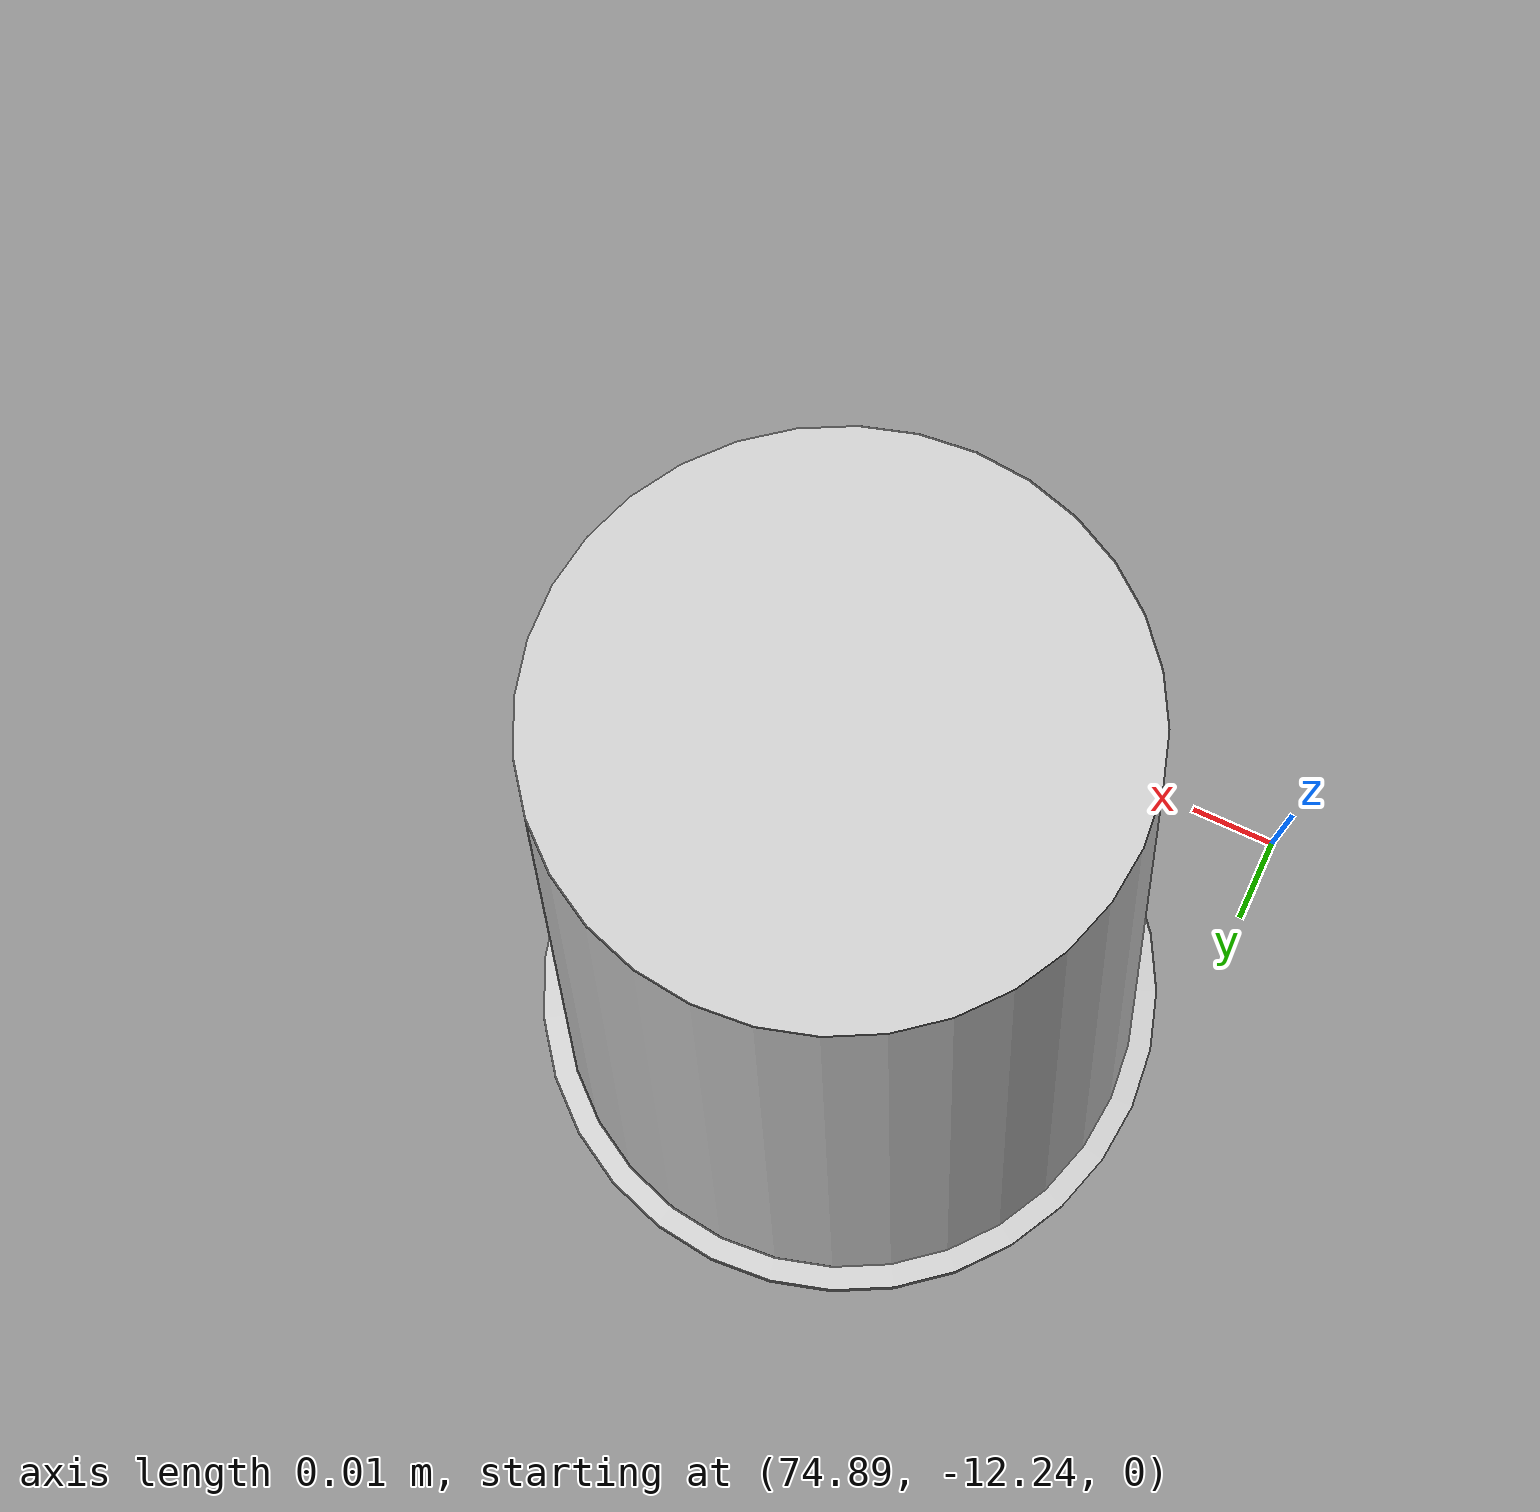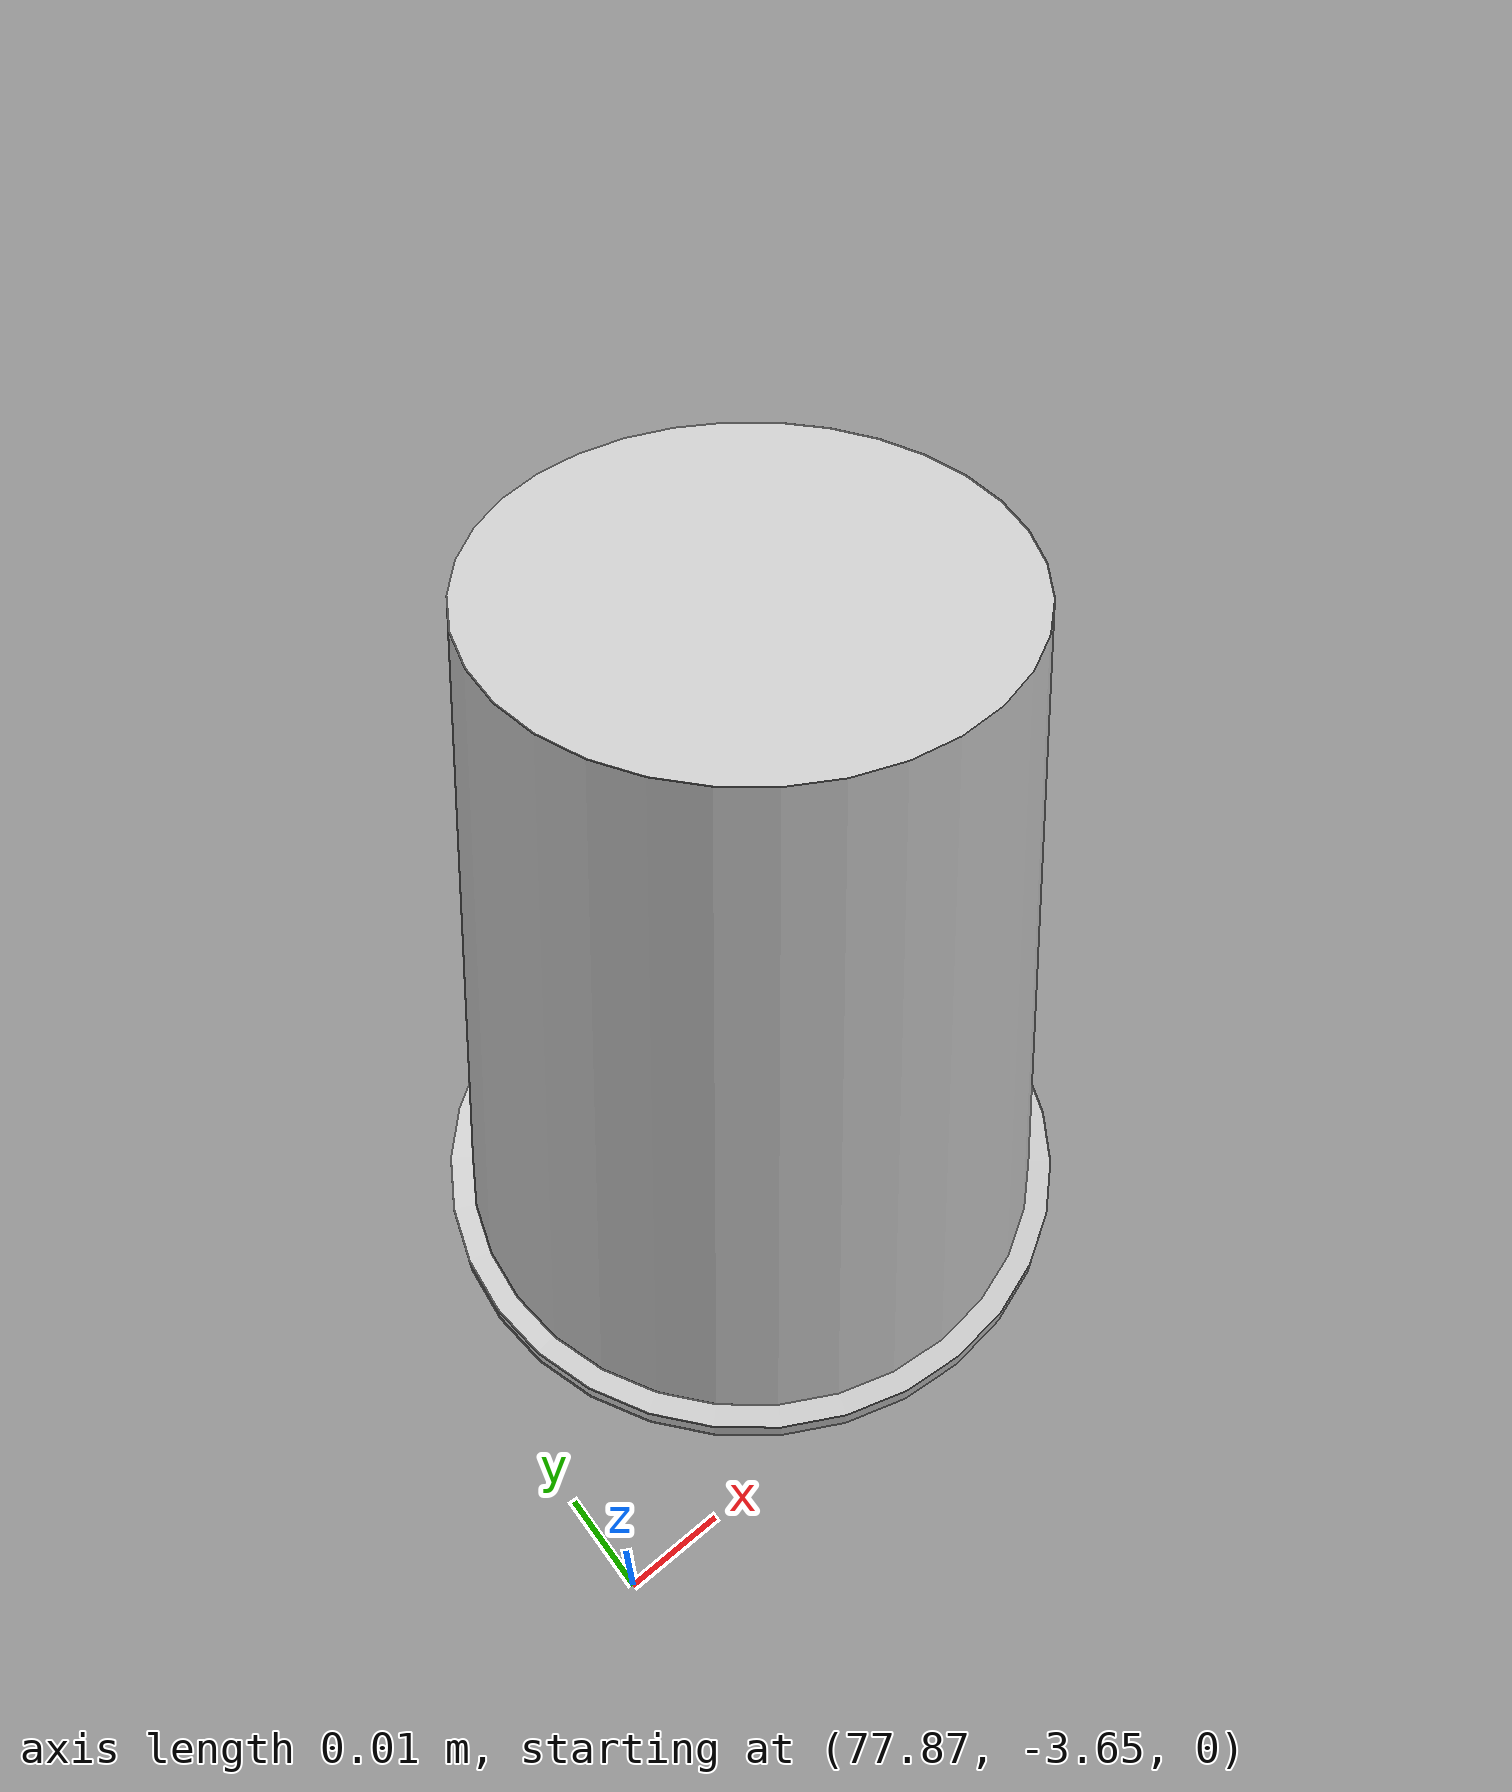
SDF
<?xml version='1.0' encoding='UTF-8'?>
<sdf version="1.4">
  <model name="some track">
    <include>
      <uri>model://cone_yellow</uri>
      <pose>13.018183827800518 -1.8761517657883515 0 0 0 0</pose>
      <name>cone_right</name>
    </include>
    <include>
      <uri>model://cone_yellow</uri>
      <pose>17.446338333294612 -1.8729243865340777 0 0 0 0</pose>
      <name>cone_right</name>
    </include>
    <include>
      <uri>model://cone_yellow</uri>
      <pose>22.03917398223844 -0.8503657977349797 0 0 0 0</pose>
      <name>cone_right</name>
    </include>
    <include>
      <uri>model://cone_yellow</uri>
      <pose>26.32002260661248 0.3801980834649836 0 0 0 0</pose>
      <name>cone_right</name>
    </include>
    <include>
      <uri>model://cone_yellow</uri>
      <pose>30.451404876103016 1.1212497239123707 0 0 0 0</pose>
      <name>cone_right</name>
    </include>
    <include>
      <uri>model://cone_yellow</uri>
      <pose>34.65109933313455 1.4989120932964197 0 0 0 0</pose>
      <name>cone_right</name>
    </include>
    <include>
      <uri>model://cone_yellow</uri>
      <pose>38.86049186484167 1.4842869000559271 0 0 0 0</pose>
      <name>cone_right</name>
    </include>
    <include>
      <uri>model://cone_yellow</uri>
      <pose>43.15242149931113 1.3215263096332124 0 0 0 0</pose>
      <name>cone_right</name>
    </include>
    <include>
      <uri>model://cone_yellow</uri>
      <pose>47.252830080558034 0.5722896899786338 0 0 0 0</pose>
      <name>cone_right</name>
    </include>
    <include>
      <uri>model://cone_yellow</uri>
      <pose>50.409138872110574 -1.4493029271943685 0 0 0 0</pose>
      <name>cone_right</name>
    </include>
    <include>
      <uri>model://cone_yellow</uri>
      <pose>52.37995716476051 -4.614360037074207 0 0 0 0</pose>
      <name>cone_right</name>
    </include>
    <include>
      <uri>model://cone_yellow</uri>
      <pose>53.428686420909216 -8.340840742944486 0 0 0 0</pose>
      <name>cone_right</name>
    </include>
    <include>
      <uri>model://cone_yellow</uri>
      <pose>53.99261852760999 -12.404962930217938 0 0 0 0</pose>
      <name>cone_right</name>
    </include>
    <include>
      <uri>model://cone_yellow</uri>
      <pose>54.54151253230147 -16.796036110092917 0 0 0 0</pose>
      <name>cone_right</name>
    </include>
    <include>
      <uri>model://cone_yellow</uri>
      <pose>60.38661123042525 -24.535169080793683 0 0 0 0</pose>
      <name>cone_right</name>
    </include>
    <include>
      <uri>model://cone_yellow</uri>
      <pose>70.39183582168157 -24.252833173585273 0 0 0 0</pose>
      <name>cone_right</name>
    </include>
    <include>
      <uri>model://cone_yellow</uri>
      <pose>77.35174907179476 -17.59254280828863 0 0 0 0</pose>
      <name>cone_right</name>
    </include>
    <include>
      <uri>model://cone_yellow</uri>
      <pose>78.14695944268779 -12.651447426787035 0 0 0 0</pose>
      <name>cone_right</name>
    </include>
    <include>
      <uri>model://cone_yellow</uri>
      <pose>78.18425080565142 -8.102791006440482 0 0 0 0</pose>
      <name>cone_right</name>
    </include>
    <include>
      <uri>model://cone_yellow</uri>
      <pose>77.90977017052852 -3.618528937957556 0 0 0 0</pose>
      <name>cone_right</name>
    </include>
    <include>
      <uri>model://cone_yellow</uri>
      <pose>72.29112397917714 4.323608194424429 0 0 0 0</pose>
      <name>cone_right</name>
    </include>
    <include>
      <uri>model://cone_yellow</uri>
      <pose>67.845990919906 6.263111611761152 0 0 0 0</pose>
      <name>cone_right</name>
    </include>
    <include>
      <uri>model://cone_yellow</uri>
      <pose>63.48034454793363 7.4888733407280395 0 0 0 0</pose>
      <name>cone_right</name>
    </include>
    <include>
      <uri>model://cone_yellow</uri>
      <pose>58.95966201330974 8.16184394716597 0 0 0 0</pose>
      <name>cone_right</name>
    </include>
    <include>
      <uri>model://cone_yellow</uri>
      <pose>54.80833237162309 9.081069343031144 0 0 0 0</pose>
      <name>cone_right</name>
    </include>
    <include>
      <uri>model://cone_yellow</uri>
      <pose>50.46742921628984 9.862091479545152 0 0 0 0</pose>
      <name>cone_right</name>
    </include>
    <include>
      <uri>model://cone_yellow</uri>
      <pose>45.89551176898509 10.085761481046779 0 0 0 0</pose>
      <name>cone_right</name>
    </include>
    <include>
      <uri>model://cone_yellow</uri>
      <pose>32.752181499183045 16.563725818774373 0 0 0 0</pose>
      <name>cone_right</name>
    </include>
    <include>
      <uri>model://cone_yellow</uri>
      <pose>32.12775019947357 20.339286712477612 0 0 0 0</pose>
      <name>cone_right</name>
    </include>
    <include>
      <uri>model://cone_yellow</uri>
      <pose>31.644544130664016 24.611409703326974 0 0 0 0</pose>
      <name>cone_right</name>
    </include>
    <include>
      <uri>model://cone_yellow</uri>
      <pose>31.04134880699015 28.963865401196166 0 0 0 0</pose>
      <name>cone_right</name>
    </include>
    <include>
      <uri>model://cone_yellow</uri>
      <pose>30.853051789699 33.113166931721864 0 0 0 0</pose>
      <name>cone_right</name>
    </include>
    <include>
      <uri>model://cone_yellow</uri>
      <pose>30.97441718426301 37.415970550041536 0 0 0 0</pose>
      <name>cone_right</name>
    </include>
    <include>
      <uri>model://cone_yellow</uri>
      <pose>28.926955552532284 46.46333764436716 0 0 0 0</pose>
      <name>cone_right</name>
    </include>
    <include>
      <uri>model://cone_yellow</uri>
      <pose>21.194099951942203 52.290363032788726 0 0 0 0</pose>
      <name>cone_right</name>
    </include>
    <include>
      <uri>model://cone_yellow</uri>
      <pose>16.408387685502955 53.24054216236376 0 0 0 0</pose>
      <name>cone_right</name>
    </include>
    <include>
      <uri>model://cone_yellow</uri>
      <pose>7.26521791242433 50.2101765499676 0 0 0 0</pose>
      <name>cone_right</name>
    </include>
    <include>
      <uri>model://cone_yellow</uri>
      <pose>5.178309369265025 40.3690123301844 0 0 0 0</pose>
      <name>cone_right</name>
    </include>
    <include>
      <uri>model://cone_yellow</uri>
      <pose>5.267407310666343 36.09420157707506 0 0 0 0</pose>
      <name>cone_right</name>
    </include>
    <include>
      <uri>model://cone_yellow</uri>
      <pose>5.000240462112762 31.86909516987686 0 0 0 0</pose>
      <name>cone_right</name>
    </include>
    <include>
      <uri>model://cone_yellow</uri>
      <pose>5.2348068549472 27.326979877221174 0 0 0 0</pose>
      <name>cone_right</name>
    </include>
    <include>
      <uri>model://cone_yellow</uri>
      <pose>5.6074450256122175 22.93380485606857 0 0 0 0</pose>
      <name>cone_right</name>
    </include>
    <include>
      <uri>model://cone_yellow</uri>
      <pose>5.488594081147825 18.753798167718816 0 0 0 0</pose>
      <name>cone_right</name>
    </include>
    <include>
      <uri>model://cone_yellow</uri>
      <pose>4.1840931059265 15.06458186588745 0 0 0 0</pose>
      <name>cone_right</name>
    </include>
    <include>
      <uri>model://cone_yellow</uri>
      <pose>1.5964927139176024 12.330962633449333 0 0 0 0</pose>
      <name>cone_right</name>
    </include>
    <include>
      <uri>model://cone_yellow</uri>
      <pose>-1.8160543833330922 11.060318989498176 0 0 0 0</pose>
      <name>cone_right</name>
    </include>
    <include>
      <uri>model://cone_yellow</uri>
      <pose>-5.689707248801369 10.829451132791386 0 0 0 0</pose>
      <name>cone_right</name>
    </include>
    <include>
      <uri>model://cone_yellow</uri>
      <pose>-12.086387971927277 17.682758430636493 0 0 0 0</pose>
      <name>cone_right</name>
    </include>
    <include>
      <uri>model://cone_yellow</uri>
      <pose>-11.871746429384476 21.457985758879598 0 0 0 0</pose>
      <name>cone_right</name>
    </include>
    <include>
      <uri>model://cone_yellow</uri>
      <pose>-10.606547512643598 25.177402416129148 0 0 0 0</pose>
      <name>cone_right</name>
    </include>
    <include>
      <uri>model://cone_yellow</uri>
      <pose>-9.343875952466115 29.39876380754218 0 0 0 0</pose>
      <name>cone_right</name>
    </include>
    <include>
      <uri>model://cone_yellow</uri>
      <pose>-8.744506850357485 33.97463811595915 0 0 0 0</pose>
      <name>cone_right</name>
    </include>
    <include>
      <uri>model://cone_yellow</uri>
      <pose>-8.738320762388863 38.55422790265706 0 0 0 0</pose>
      <name>cone_right</name>
    </include>
    <include>
      <uri>model://cone_yellow</uri>
      <pose>-8.941323130932238 42.95867869614133 0 0 0 0</pose>
      <name>cone_right</name>
    </include>
    <include>
      <uri>model://cone_yellow</uri>
      <pose>-9.398862549321064 47.448636112305294 0 0 0 0</pose>
      <name>cone_right</name>
    </include>
    <include>
      <uri>model://cone_yellow</uri>
      <pose>-10.6938574721209 51.955422592191816 0 0 0 0</pose>
      <name>cone_right</name>
    </include>
    <include>
      <uri>model://cone_yellow</uri>
      <pose>-14.040887996151202 55.74999104773838 0 0 0 0</pose>
      <name>cone_right</name>
    </include>
    <include>
      <uri>model://cone_yellow</uri>
      <pose>-18.760782492327625 57.74707265998496 0 0 0 0</pose>
      <name>cone_right</name>
    </include>
    <include>
      <uri>model://cone_yellow</uri>
      <pose>-23.636462337195834 58.06064498584781 0 0 0 0</pose>
      <name>cone_right</name>
    </include>
    <include>
      <uri>model://cone_yellow</uri>
      <pose>-28.34342333380633 57.31688930300705 0 0 0 0</pose>
      <name>cone_right</name>
    </include>
    <include>
      <uri>model://cone_yellow</uri>
      <pose>-32.639235381168135 55.17723407556046 0 0 0 0</pose>
      <name>cone_right</name>
    </include>
    <include>
      <uri>model://cone_yellow</uri>
      <pose>-36.05411766700047 51.58970336580867 0 0 0 0</pose>
      <name>cone_right</name>
    </include>
    <include>
      <uri>model://cone_yellow</uri>
      <pose>-38.51407400184855 47.44666669822931 0 0 0 0</pose>
      <name>cone_right</name>
    </include>
    <include>
      <uri>model://cone_yellow</uri>
      <pose>-40.339219275870995 43.2570370690984 0 0 0 0</pose>
      <name>cone_right</name>
    </include>
    <include>
      <uri>model://cone_yellow</uri>
      <pose>-41.82813541282153 39.06411312522494 0 0 0 0</pose>
      <name>cone_right</name>
    </include>
    <include>
      <uri>model://cone_yellow</uri>
      <pose>-43.22423382713899 34.906566218957906 0 0 0 0</pose>
      <name>cone_right</name>
    </include>
    <include>
      <uri>model://cone_yellow</uri>
      <pose>-44.66486928236475 30.804048948435803 0 0 0 0</pose>
      <name>cone_right</name>
    </include>
    <include>
      <uri>model://cone_yellow</uri>
      <pose>-46.196054801523836 26.794798523346987 0 0 0 0</pose>
      <name>cone_right</name>
    </include>
    <include>
      <uri>model://cone_yellow</uri>
      <pose>-47.80523538546596 22.822522778915673 0 0 0 0</pose>
      <name>cone_right</name>
    </include>
    <include>
      <uri>model://cone_yellow</uri>
      <pose>-49.368832209708565 18.606207689337495 0 0 0 0</pose>
      <name>cone_right</name>
    </include>
    <include>
      <uri>model://cone_yellow</uri>
      <pose>-50.50463213405897 14.039948751311872 0 0 0 0</pose>
      <name>cone_right</name>
    </include>
    <include>
      <uri>model://cone_yellow</uri>
      <pose>-44.10519070384456 1.4710693482319939 0 0 0 0</pose>
      <name>cone_right</name>
    </include>
    <include>
      <uri>model://cone_yellow</uri>
      <pose>-39.80664930721929 -0.745556370054402 0 0 0 0</pose>
      <name>cone_right</name>
    </include>
    <include>
      <uri>model://cone_yellow</uri>
      <pose>-35.2453050019674 -1.911456622080083 0 0 0 0</pose>
      <name>cone_right</name>
    </include>
    <include>
      <uri>model://cone_yellow</uri>
      <pose>-30.593443246743846 -2.1550934511213735 0 0 0 0</pose>
      <name>cone_right</name>
    </include>
    <include>
      <uri>model://cone_yellow</uri>
      <pose>-26.094529260209477 -2.0218251154210467 0 0 0 0</pose>
      <name>cone_right</name>
    </include>
    <include>
      <uri>model://cone_yellow</uri>
      <pose>-21.78471789484447 -2.032971809745005 0 0 0 0</pose>
      <name>cone_right</name>
    </include>
    <include>
      <uri>model://cone_yellow</uri>
      <pose>-17.410995233155784 -1.9905332545981516 0 0 0 0</pose>
      <name>cone_right</name>
    </include>
    <include>
      <uri>model://cone_yellow</uri>
      <pose>-12.983617841508979 -1.7507572763814574 0 0 0 0</pose>
      <name>cone_right</name>
    </include>
    <include>
      <uri>model://cone_yellow</uri>
      <pose>55.465434397724806 -20.095279188084632 0 0 0 0</pose>
      <name>cone_right</name>
    </include>
    <include>
      <uri>model://cone_yellow</uri>
      <pose>57.583167865657515 -22.723309877205942 0 0 0 0</pose>
      <name>cone_right</name>
    </include>
    <include>
      <uri>model://cone_yellow</uri>
      <pose>63.885338547336744 -25.478914871624397 0 0 0 0</pose>
      <name>cone_right</name>
    </include>
    <include>
      <uri>model://cone_yellow</uri>
      <pose>67.38087451247867 -25.01964737255465 0 0 0 0</pose>
      <name>cone_right</name>
    </include>
    <include>
      <uri>model://cone_yellow</uri>
      <pose>73.47892630568246 -22.748824738265377 0 0 0 0</pose>
      <name>cone_right</name>
    </include>
    <include>
      <uri>model://cone_yellow</uri>
      <pose>75.67320435679345 -20.37594265973837 0 0 0 0</pose>
      <name>cone_right</name>
    </include>
    <include>
      <uri>model://cone_yellow</uri>
      <pose>76.94896533146829 -0.14230048266572481 0 0 0 0</pose>
      <name>cone_right</name>
    </include>
    <include>
      <uri>model://cone_yellow</uri>
      <pose>75.17047693946225 2.3736099255379415 0 0 0 0</pose>
      <name>cone_right</name>
    </include>
    <include>
      <uri>model://cone_yellow</uri>
      <pose>42.231958844319735 10.182243683566707 0 0 0 0</pose>
      <name>cone_right</name>
    </include>
    <include>
      <uri>model://cone_yellow</uri>
      <pose>39.3032902523947 10.78366669797989 0 0 0 0</pose>
      <name>cone_right</name>
    </include>
    <include>
      <uri>model://cone_yellow</uri>
      <pose>36.89759819474201 11.698875632956454 0 0 0 0</pose>
      <name>cone_right</name>
    </include>
    <include>
      <uri>model://cone_yellow</uri>
      <pose>34.54420379051654 13.790781770045761 0 0 0 0</pose>
      <name>cone_right</name>
    </include>
    <include>
      <uri>model://cone_yellow</uri>
      <pose>30.831070397183026 40.90711507206588 0 0 0 0</pose>
      <name>cone_right</name>
    </include>
    <include>
      <uri>model://cone_yellow</uri>
      <pose>30.22964738276985 43.91423014413175 0 0 0 0</pose>
      <name>cone_right</name>
    </include>
    <include>
      <uri>model://cone_yellow</uri>
      <pose>26.830299909999734 48.85635839300524 0 0 0 0</pose>
      <name>cone_right</name>
    </include>
    <include>
      <uri>model://cone_yellow</uri>
      <pose>24.215417238638103 50.63447860953114 0 0 0 0</pose>
      <name>cone_right</name>
    </include>
    <include>
      <uri>model://cone_yellow</uri>
      <pose>12.626162715644853 53.12158697428778 0 0 0 0</pose>
      <name>cone_right</name>
    </include>
    <include>
      <uri>model://cone_yellow</uri>
      <pose>9.816570727400144 51.912395485676136 0 0 0 0</pose>
      <name>cone_right</name>
    </include>
    <include>
      <uri>model://cone_yellow</uri>
      <pose>5.548836061711977 47.25345180896656 0 0 0 0</pose>
      <name>cone_right</name>
    </include>
    <include>
      <uri>model://cone_yellow</uri>
      <pose>5.086498139595761 43.83926407641603 0 0 0 0</pose>
      <name>cone_right</name>
    </include>
    <include>
      <uri>model://cone_yellow</uri>
      <pose>-8.179043779584951 10.79988487288017 0 0 0 0</pose>
      <name>cone_right</name>
    </include>
    <include>
      <uri>model://cone_yellow</uri>
      <pose>-10.063959923597231 12.649236561345038 0 0 0 0</pose>
      <name>cone_right</name>
    </include>
    <include>
      <uri>model://cone_yellow</uri>
      <pose>-11.202022501114072 14.818668349736523 0 0 0 0</pose>
      <name>cone_right</name>
    </include>
    <include>
      <uri>model://cone_yellow</uri>
      <pose>-50.789799660683656 9.890630582532133 0 0 0 0</pose>
      <name>cone_right</name>
    </include>
    <include>
      <uri>model://cone_yellow</uri>
      <pose>-49.359743827749554 6.488083945551001 0 0 0 0</pose>
      <name>cone_right</name>
    </include>
    <include>
      <uri>model://cone_yellow</uri>
      <pose>-46.894130322690756 3.825221360087504 0 0 0 0</pose>
      <name>cone_right</name>
    </include>
    <include>
      <uri>model://cone_yellow</uri>
      <pose>2.8860836360147886 -1.7888053387837601 0 0 0 0</pose>
      <name>cone_right</name>
    </include>
    <include>
      <uri>model://cone_yellow</uri>
      <pose>-7.760488933641973 -1.687730282742713 0 0 0 0</pose>
      <name>cone_right</name>
    </include>
    <include>
      <uri>model://cone_yellow</uri>
      <pose>-2.9088862436718017 -1.687730282742713 0 0 0 0</pose>
      <name>cone_right</name>
    </include>
    <include>
      <uri>model://cone_yellow</uri>
      <pose>7.569227899249885 -1.8561887094777845 0 0 0 0</pose>
      <name>cone_right</name>
    </include>
    <include>
      <uri>model://cone_blue</uri>
      <pose>13.127640110177092 1.3720045300583092 0 0 0 0</pose>
      <name>cone_left</name>
    </include>
    <include>
      <uri>model://cone_blue</uri>
      <pose>17.443254395827942 1.3770741502855472 0 0 0 0</pose>
      <name>cone_left</name>
    </include>
    <include>
      <uri>model://cone_blue</uri>
      <pose>21.30480768146249 2.3155789485113356 0 0 0 0</pose>
      <name>cone_left</name>
    </include>
    <include>
      <uri>model://cone_blue</uri>
      <pose>25.420575741081517 3.5032567342249292 0 0 0 0</pose>
      <name>cone_left</name>
    </include>
    <include>
      <uri>model://cone_blue</uri>
      <pose>29.871300487145017 4.319058176260896 0 0 0 0</pose>
      <name>cone_left</name>
    </include>
    <include>
      <uri>model://cone_blue</uri>
      <pose>34.35515761802989 4.7354099692822675 0 0 0 0</pose>
      <name>cone_left</name>
    </include>
    <include>
      <uri>model://cone_blue</uri>
      <pose>38.866362907757726 4.734281597106229 0 0 0 0</pose>
      <name>cone_left</name>
    </include>
    <include>
      <uri>model://cone_blue</uri>
      <pose>43.274791286367815 4.569221744124523 0 0 0 0</pose>
      <name>cone_left</name>
    </include>
    <include>
      <uri>model://cone_blue</uri>
      <pose>47.824930209191116 3.7715398275605647 0 0 0 0</pose>
      <name>cone_left</name>
    </include>
    <include>
      <uri>model://cone_blue</uri>
      <pose>52.08346140045816 1.3362210937158363 0 0 0 0</pose>
      <name>cone_left</name>
    </include>
    <include>
      <uri>model://cone_blue</uri>
      <pose>55.06765753276193 -2.787130787131813 0 0 0 0</pose>
      <name>cone_left</name>
    </include>
    <include>
      <uri>model://cone_blue</uri>
      <pose>56.53968573244879 -7.4005305368952845 0 0 0 0</pose>
      <name>cone_left</name>
    </include>
    <include>
      <uri>model://cone_blue</uri>
      <pose>57.209726235877966 -11.943749320918752 0 0 0 0</pose>
      <name>cone_left</name>
    </include>
    <include>
      <uri>model://cone_blue</uri>
      <pose>57.76639081848957 -16.392724767241635 0 0 0 0</pose>
      <name>cone_left</name>
    </include>
    <include>
      <uri>model://cone_blue</uri>
      <pose>59.31499939535701 -19.955571160688535 0 0 0 0</pose>
      <name>cone_left</name>
    </include>
    <include>
      <uri>model://cone_blue</uri>
      <pose>62.33407878804518 -21.933271674665253 0 0 0 0</pose>
      <name>cone_left</name>
    </include>
    <include>
      <uri>model://cone_blue</uri>
      <pose>65.80772703369279 -22.062853848722526 0 0 0 0</pose>
      <name>cone_left</name>
    </include>
    <include>
      <uri>model://cone_blue</uri>
      <pose>69.66284823629273 -21.08564560409259 0 0 0 0</pose>
      <name>cone_left</name>
    </include>
    <include>
      <uri>model://cone_blue</uri>
      <pose>73.0596273555028 -19.195045080087635 0 0 0 0</pose>
      <name>cone_left</name>
    </include>
    <include>
      <uri>model://cone_blue</uri>
      <pose>74.50395450575297 -16.026475724916143 0 0 0 0</pose>
      <name>cone_left</name>
    </include>
    <include>
      <uri>model://cone_blue</uri>
      <pose>74.92795980725829 -12.20362899583016 0 0 0 0</pose>
      <name>cone_left</name>
    </include>
    <include>
      <uri>model://cone_blue</uri>
      <pose>74.93429198354384 -8.086430853473617 0 0 0 0</pose>
      <name>cone_left</name>
    </include>
    <include>
      <uri>model://cone_blue</uri>
      <pose>74.66600350025861 -3.8197198643089334 0 0 0 0</pose>
      <name>cone_left</name>
    </include>
    <include>
      <uri>model://cone_blue</uri>
      <pose>73.15363684276068 -0.19645945902264073 0 0 0 0</pose>
      <name>cone_left</name>
    </include>
    <include>
      <uri>model://cone_blue</uri>
      <pose>70.28683381166243 1.76522571238546 0 0 0 0</pose>
      <name>cone_left</name>
    </include>
    <include>
      <uri>model://cone_blue</uri>
      <pose>66.58115844365307 3.2693349322114074 0 0 0 0</pose>
      <name>cone_left</name>
    </include>
    <include>
      <uri>model://cone_blue</uri>
      <pose>62.61112027278805 4.357268455130619 0 0 0 0</pose>
      <name>cone_left</name>
    </include>
    <include>
      <uri>model://cone_blue</uri>
      <pose>58.49015521118845 4.9459360873599945 0 0 0 0</pose>
      <name>cone_left</name>
    </include>
    <include>
      <uri>model://cone_blue</uri>
      <pose>54.108844973192255 5.907236111836337 0 0 0 0</pose>
      <name>cone_left</name>
    </include>
    <include>
      <uri>model://cone_blue</uri>
      <pose>49.892829846538696 6.663289271799011 0 0 0 0</pose>
      <name>cone_left</name>
    </include>
    <include>
      <uri>model://cone_blue</uri>
      <pose>45.7467194044373 6.839169293498076 0 0 0 0</pose>
      <name>cone_left</name>
    </include>
    <include>
      <uri>model://cone_blue</uri>
      <pose>41.364197514481226 7.133179457401107 0 0 0 0</pose>
      <name>cone_left</name>
    </include>
    <include>
      <uri>model://cone_blue</uri>
      <pose>32.63525128097976 10.612116826528766 0 0 0 0</pose>
      <name>cone_left</name>
    </include>
    <include>
      <uri>model://cone_blue</uri>
      <pose>29.939651934043933 14.935175099509415 0 0 0 0</pose>
      <name>cone_left</name>
    </include>
    <include>
      <uri>model://cone_blue</uri>
      <pose>28.934893795857835 19.732518234481258 0 0 0 0</pose>
      <name>cone_left</name>
    </include>
    <include>
      <uri>model://cone_blue</uri>
      <pose>28.415516561386696 24.24278936090541 0 0 0 0</pose>
      <name>cone_left</name>
    </include>
    <include>
      <uri>model://cone_blue</uri>
      <pose>27.82216492824587 28.517373346582723 0 0 0 0</pose>
      <name>cone_left</name>
    </include>
    <include>
      <uri>model://cone_blue</uri>
      <pose>27.606635094571697 32.96059353430698 0 0 0 0</pose>
      <name>cone_left</name>
    </include>
    <include>
      <uri>model://cone_blue</uri>
      <pose>27.725615993800645 37.504236199363916 0 0 0 0</pose>
      <name>cone_left</name>
    </include>
    <include>
      <uri>model://cone_blue</uri>
      <pose>19.670559211982297 49.419592471827364 0 0 0 0</pose>
      <name>cone_left</name>
    </include>
    <include>
      <uri>model://cone_blue</uri>
      <pose>15.825362213210102 50.04326499285566 0 0 0 0</pose>
      <name>cone_left</name>
    </include>
    <include>
      <uri>model://cone_blue</uri>
      <pose>11.93568072925043 49.633345846257136 0 0 0 0</pose>
      <name>cone_left</name>
    </include>
    <include>
      <uri>model://cone_blue</uri>
      <pose>9.056715254637798 47.498528107996904 0 0 0 0</pose>
      <name>cone_left</name>
    </include>
    <include>
      <uri>model://cone_blue</uri>
      <pose>8.026699350111071 44.209951741079685 0 0 0 0</pose>
      <name>cone_left</name>
    </include>
    <include>
      <uri>model://cone_blue</uri>
      <pose>8.421661377067174 40.57678083955424 0 0 0 0</pose>
      <name>cone_left</name>
    </include>
    <include>
      <uri>model://cone_blue</uri>
      <pose>8.516677870675629 36.16305524696228 0 0 0 0</pose>
      <name>cone_left</name>
    </include>
    <include>
      <uri>model://cone_blue</uri>
      <pose>8.244030701441012 31.66828460432121 0 0 0 0</pose>
      <name>cone_left</name>
    </include>
    <include>
      <uri>model://cone_blue</uri>
      <pose>8.480071207129114 27.50236312743996 0 0 0 0</pose>
      <name>cone_left</name>
    </include>
    <include>
      <uri>model://cone_blue</uri>
      <pose>8.845768138007452 23.2090564132428 0 0 0 0</pose>
      <name>cone_left</name>
    </include>
    <include>
      <uri>model://cone_blue</uri>
      <pose>8.737492167034622 18.669174131410475 0 0 0 0</pose>
      <name>cone_left</name>
    </include>
    <include>
      <uri>model://cone_blue</uri>
      <pose>7.2672215910083615 14.036564966961743 0 0 0 0</pose>
      <name>cone_left</name>
    </include>
    <include>
      <uri>model://cone_blue</uri>
      <pose>4.032163709503527 10.179217573907783 0 0 0 0</pose>
      <name>cone_left</name>
    </include>
    <include>
      <uri>model://cone_blue</uri>
      <pose>-5.4276189013229175 7.590036108729786 0 0 0 0</pose>
      <name>cone_left</name>
    </include>
    <include>
      <uri>model://cone_blue</uri>
      <pose>-15.225892106319698 16.84251216308579 0 0 0 0</pose>
      <name>cone_left</name>
    </include>
    <include>
      <uri>model://cone_blue</uri>
      <pose>-15.119437151511391 21.580480548200416 0 0 0 0</pose>
      <name>cone_left</name>
    </include>
    <include>
      <uri>model://cone_blue</uri>
      <pose>-13.699266856680655 26.176195216973746 0 0 0 0</pose>
      <name>cone_left</name>
    </include>
    <include>
      <uri>model://cone_blue</uri>
      <pose>-12.457650723752694 30.329842039324674 0 0 0 0</pose>
      <name>cone_left</name>
    </include>
    <include>
      <uri>model://cone_blue</uri>
      <pose>-11.968964608226319 34.38129788495468 0 0 0 0</pose>
      <name>cone_left</name>
    </include>
    <include>
      <uri>model://cone_blue</uri>
      <pose>-11.988317081055936 38.5493362106717 0 0 0 0</pose>
      <name>cone_left</name>
    </include>
    <include>
      <uri>model://cone_blue</uri>
      <pose>-12.187820745691047 42.80783693347144 0 0 0 0</pose>
      <name>cone_left</name>
    </include>
    <include>
      <uri>model://cone_blue</uri>
      <pose>-12.631934181672294 47.117354026937335 0 0 0 0</pose>
      <name>cone_left</name>
    </include>
    <include>
      <uri>model://cone_blue</uri>
      <pose>-13.812186951910011 51.03971452982797 0 0 0 0</pose>
      <name>cone_left</name>
    </include>
    <include>
      <uri>model://cone_blue</uri>
      <pose>-16.40110121365169 53.51573645885734 0 0 0 0</pose>
      <name>cone_left</name>
    </include>
    <include>
      <uri>model://cone_blue</uri>
      <pose>-19.934951053785174 54.71658949895524 0 0 0 0</pose>
      <name>cone_left</name>
    </include>
    <include>
      <uri>model://cone_blue</uri>
      <pose>-23.789382369197046 54.81424460021871 0 0 0 0</pose>
      <name>cone_left</name>
    </include>
    <include>
      <uri>model://cone_blue</uri>
      <pose>-27.811828776113234 54.110659862335176 0 0 0 0</pose>
      <name>cone_left</name>
    </include>
    <include>
      <uri>model://cone_blue</uri>
      <pose>-31.1421777470314 52.29256452081543 0 0 0 0</pose>
      <name>cone_left</name>
    </include>
    <include>
      <uri>model://cone_blue</uri>
      <pose>-33.6556264805312 49.39659141507993 0 0 0 0</pose>
      <name>cone_left</name>
    </include>
    <include>
      <uri>model://cone_blue</uri>
      <pose>-35.70705169770978 45.808641733807974 0 0 0 0</pose>
      <name>cone_left</name>
    </include>
    <include>
      <uri>model://cone_blue</uri>
      <pose>-37.35636362988485 41.96666030427018 0 0 0 0</pose>
      <name>cone_left</name>
    </include>
    <include>
      <uri>model://cone_blue</uri>
      <pose>-38.764584923471084 37.97914381727164 0 0 0 0</pose>
      <name>cone_left</name>
    </include>
    <include>
      <uri>model://cone_blue</uri>
      <pose>-40.14324739848901 33.87214723881753 0 0 0 0</pose>
      <name>cone_left</name>
    </include>
    <include>
      <uri>model://cone_blue</uri>
      <pose>-41.59840125014989 29.727353166237155 0 0 0 0</pose>
      <name>cone_left</name>
    </include>
    <include>
      <uri>model://cone_blue</uri>
      <pose>-43.159781067085994 25.63568601389726 0 0 0 0</pose>
      <name>cone_left</name>
    </include>
    <include>
      <uri>model://cone_blue</uri>
      <pose>-44.79292180850186 21.60249535543795 0 0 0 0</pose>
      <name>cone_left</name>
    </include>
    <include>
      <uri>model://cone_blue</uri>
      <pose>-46.32143746541502 17.47665677306498 0 0 0 0</pose>
      <name>cone_left</name>
    </include>
    <include>
      <uri>model://cone_blue</uri>
      <pose>-47.34900234170848 13.262452375995561 0 0 0 0</pose>
      <name>cone_left</name>
    </include>
    <include>
      <uri>model://cone_blue</uri>
      <pose>-47.05094819286519 9.497084914621379 0 0 0 0</pose>
      <name>cone_left</name>
    </include>
    <include>
      <uri>model://cone_blue</uri>
      <pose>-45.098267940268386 6.481875024383994 0 0 0 0</pose>
      <name>cone_left</name>
    </include>
    <include>
      <uri>model://cone_blue</uri>
      <pose>-41.99066185883043 3.9391187325845833 0 0 0 0</pose>
      <name>cone_left</name>
    </include>
    <include>
      <uri>model://cone_blue</uri>
      <pose>-38.34548433158635 2.1574587718254303 0 0 0 0</pose>
      <name>cone_left</name>
    </include>
    <include>
      <uri>model://cone_blue</uri>
      <pose>-34.46782724362213 1.2441777571340877 0 0 0 0</pose>
      <name>cone_left</name>
    </include>
    <include>
      <uri>model://cone_blue</uri>
      <pose>-30.445122931262176 1.0915203361984886 0 0 0 0</pose>
      <name>cone_left</name>
    </include>
    <include>
      <uri>model://cone_blue</uri>
      <pose>-26.194173517266528 1.2266469903596922 0 0 0 0</pose>
      <name>cone_left</name>
    </include>
    <include>
      <uri>model://cone_blue</uri>
      <pose>-21.776981265376932 1.2170189817134078 0 0 0 0</pose>
      <name>cone_left</name>
    </include>
    <include>
      <uri>model://cone_blue</uri>
      <pose>-17.44261727863452 1.259312902720644 0 0 0 0</pose>
      <name>cone_left</name>
    </include>
    <include>
      <uri>model://cone_blue</uri>
      <pose>-13.16056260082829 1.4944223106598251 0 0 0 0</pose>
      <name>cone_left</name>
    </include>
    <include>
      <uri>model://cone_blue</uri>
      <pose>37.86510478314581 7.645807492345931 0 0 0 0</pose>
      <name>cone_left</name>
    </include>
    <include>
      <uri>model://cone_blue</uri>
      <pose>35.09332915150248 8.691760560890579 0 0 0 0</pose>
      <name>cone_left</name>
    </include>
    <include>
      <uri>model://cone_blue</uri>
      <pose>31.1187074910328 12.457191607651332 0 0 0 0</pose>
      <name>cone_left</name>
    </include>
    <include>
      <uri>model://cone_blue</uri>
      <pose>27.379425270985674 40.59332915150248 0 0 0 0</pose>
      <name>cone_left</name>
    </include>
    <include>
      <uri>model://cone_blue</uri>
      <pose>26.908746390140582 42.94672355572795 0 0 0 0</pose>
      <name>cone_left</name>
    </include>
    <include>
      <uri>model://cone_blue</uri>
      <pose>24.895286733192126 45.77079684079851 0 0 0 0</pose>
      <name>cone_left</name>
    </include>
    <include>
      <uri>model://cone_blue</uri>
      <pose>22.646487635821124 47.784256497746966 0 0 0 0</pose>
      <name>cone_left</name>
    </include>
    <include>
      <uri>model://cone_blue</uri>
      <pose>0.9610212960971936 8.417066351204276 0 0 0 0</pose>
      <name>cone_left</name>
    </include>
    <include>
      <uri>model://cone_blue</uri>
      <pose>-1.7418773255053068 7.7769061513510565 0 0 0 0</pose>
      <name>cone_left</name>
    </include>
    <include>
      <uri>model://cone_blue</uri>
      <pose>-8.14347932403755 7.492390506971844 0 0 0 0</pose>
      <name>cone_left</name>
    </include>
    <include>
      <uri>model://cone_blue</uri>
      <pose>-11.059764678924466 7.95472842908806 0 0 0 0</pose>
      <name>cone_left</name>
    </include>
    <include>
      <uri>model://cone_blue</uri>
      <pose>-12.517907356367921 9.697386750910724 0 0 0 0</pose>
      <name>cone_left</name>
    </include>
    <include>
      <uri>model://cone_blue</uri>
      <pose>-13.691534389432164 12.115769728134023 0 0 0 0</pose>
      <name>cone_left</name>
    </include>
    <include>
      <uri>model://cone_blue</uri>
      <pose>-14.616210233664596 14.285201516525504 0 0 0 0</pose>
      <name>cone_left</name>
    </include>
    <include>
      <uri>model://cone_blue</uri>
      <pose>-2.9425779290188174 1.6814382519587951 0 0 0 0</pose>
      <name>cone_left</name>
    </include>
    <include>
      <uri>model://cone_blue</uri>
      <pose>-7.659413877600933 1.7151299373058109 0 0 0 0</pose>
      <name>cone_left</name>
    </include>
    <include>
      <uri>model://cone_blue</uri>
      <pose>2.9534670067088236 1.7151299373058109 0 0 0 0</pose>
      <name>cone_left</name>
    </include>
    <include>
      <uri>model://cone_blue</uri>
      <pose>7.771378011331976 1.6477465666117794 0 0 0 0</pose>
      <name>cone_left</name>
    </include>
    <include>
      <uri>model://cone_orange_big</uri>
      <pose>-1.3 2.125 0 0 0 0</pose>
      <name>cone_orange_big</name>
    </include>
    <include>
      <uri>model://cone_orange_big</uri>
      <pose>-1.3 -2.125 0 0 0 0</pose>
      <name>cone_orange_big</name>
    </include>
    <include>
      <uri>model://cone_orange_big</uri>
      <pose>1.3 2.125 0 0 0 0</pose>
      <name>cone_orange_big</name>
    </include>
    <include>
      <uri>model://cone_orange_big</uri>
      <pose>1.3 -2.125 0 0 0 0</pose>
      <name>cone_orange_big</name>
    </include>
  </model>
</sdf>

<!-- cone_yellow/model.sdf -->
<sdf version='1.4'>
  <model name="cone_yellow">
    <link name="link">
    <collision name="collision"><geometry><box><size> 0.05 0.05 0.01</size>
             </box></geometry></collision>
      <visual name="visual">
        <geometry>
          <mesh>
            <uri>model://cup.dae</uri>
            <scale>1 1 1</scale>
          </mesh>
        </geometry>
        <material>
            <script>
              <uri>model://cone_yellow/materials/scripts</uri>
              <uri>model://cone_yellow/materials/textures</uri>
              <name>cone_yellow/Image</name>
            </script>
        </material>
      </visual>
    </link>
  </model>
</sdf>

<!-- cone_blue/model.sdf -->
<sdf version='1.4'>
  <model name="cone_blue">
    <link name="link">
    <collision name="collision"><geometry><box><size> 0.05 0.05 0.01</size>
             </box></geometry></collision>
      <visual name="visual">
        <geometry>
          <mesh>
            <uri>model://cup.dae</uri>
            <scale>1 1 1</scale>
          </mesh>
        </geometry>
        <material>
            <script>
              <uri>model://cone_blue/materials/scripts</uri>
              <uri>model://cone_blue/materials/textures</uri>
              <name>cone_blue/Image</name>
            </script>
        </material>
      </visual>
    </link>
  </model>
</sdf>

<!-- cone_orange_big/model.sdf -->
<sdf version='1.4'>
  <model name="cone_orange_big">
    <link name="link">
    <collision name="collision"><geometry><box><size> 0.05 0.05 0.01</size>
             </box></geometry></collision>
      <visual name="visual">
        <geometry>
          <mesh>
            <uri>model://cup.dae</uri>
            <scale>1 1 1</scale>
          </mesh>
        </geometry>
        <material>
            <script>
              <uri>model://cone_orange_big/materials/scripts</uri>
              <uri>model://cone_orange_big/materials/textures</uri>
              <name>cone_orange_big/Image</name>
            </script>
        </material>
      </visual>
    </link>
  </model>
</sdf>
